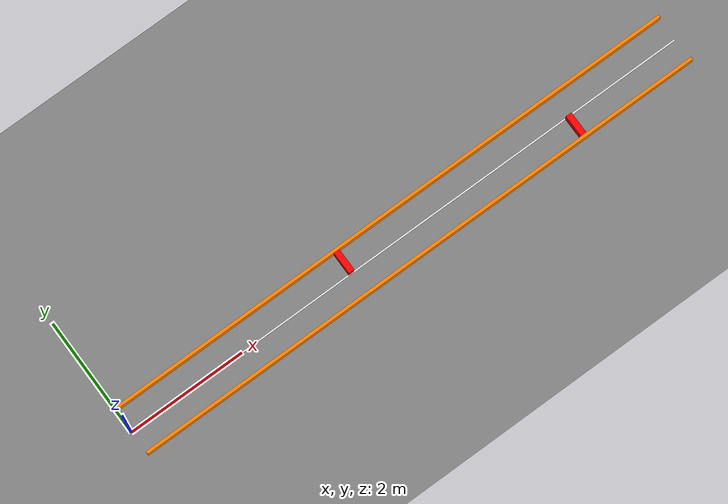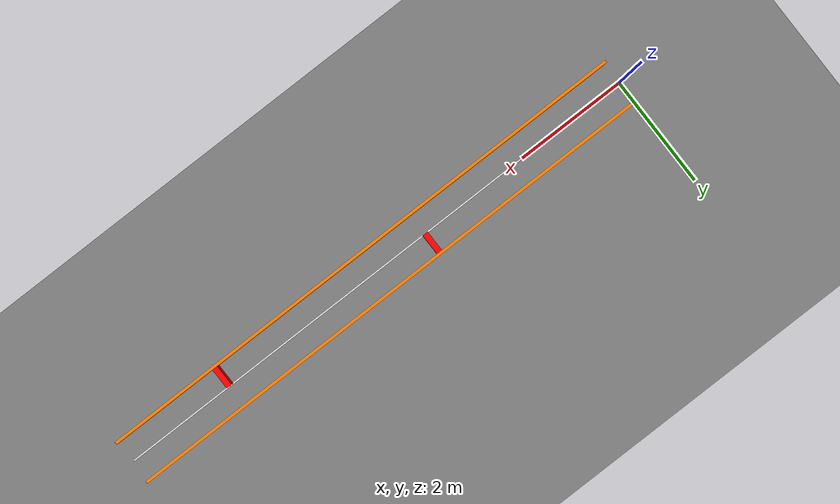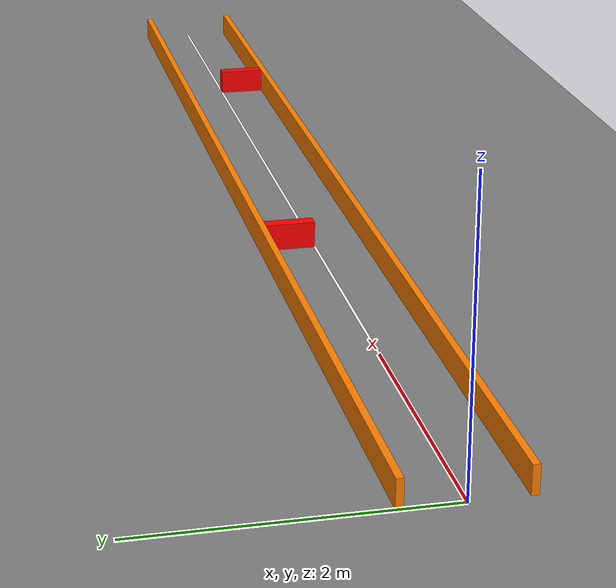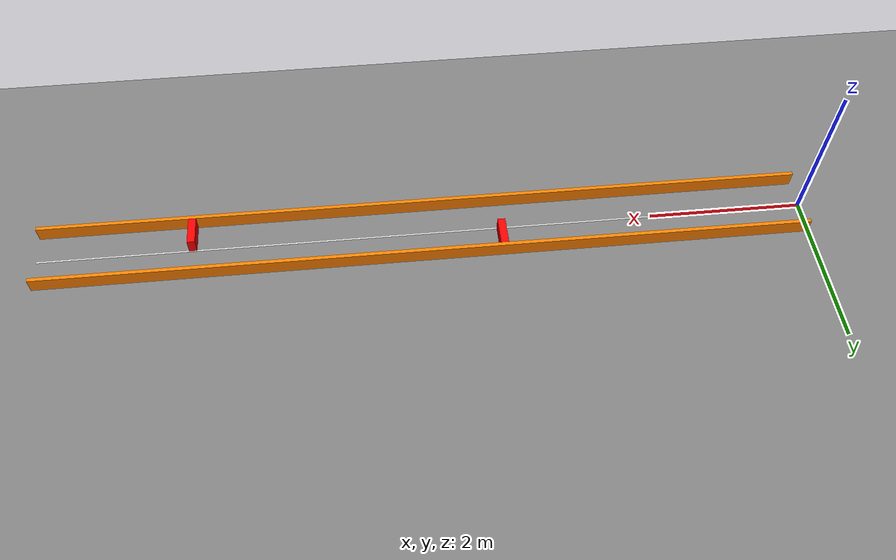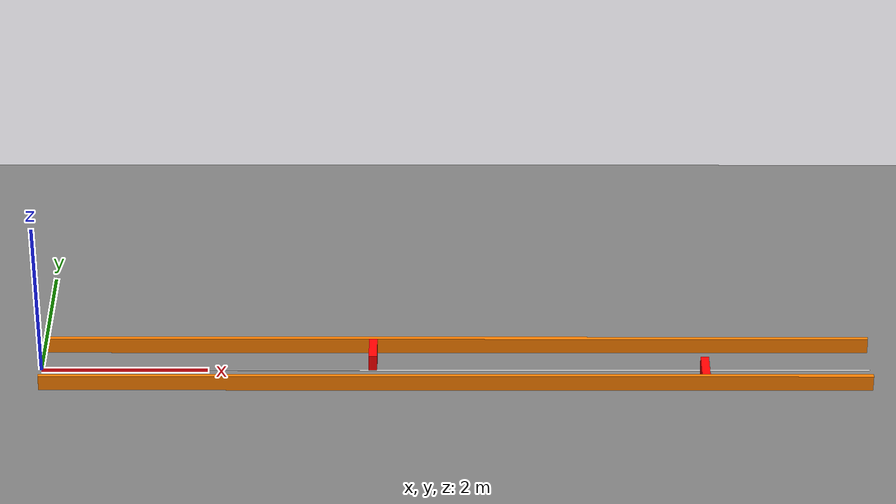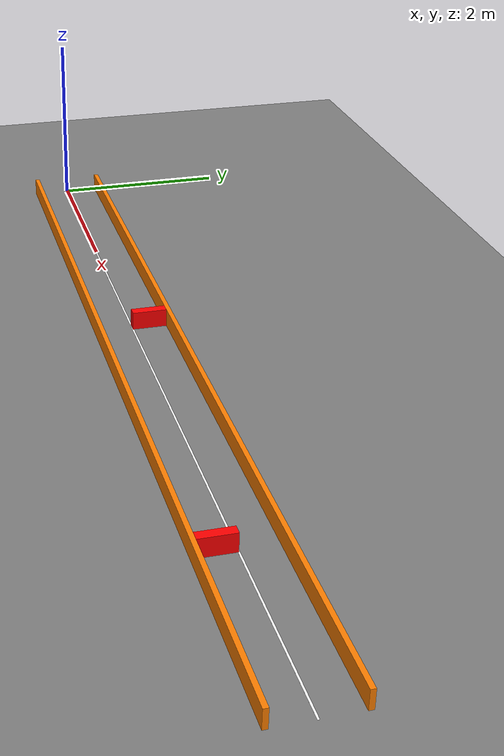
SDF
<?xml version="1.0" ?>
<sdf version="1.9">
  <world name="racing_track">
    <!-- Required Physics and Render Plugins for Modern Gazebo -->
    <physics name="1ms" type="ignored">
      <max_step_size>0.001</max_step_size>
      <real_time_factor>1.0</real_time_factor>
    </physics>
    <plugin filename="gz-sim-physics-system" name="gz::sim::systems::Physics" />
    <plugin filename="gz-sim-user-commands-system" name="gz::sim::systems::UserCommands" />
    <plugin filename="gz-sim-scene-broadcaster-system" name="gz::sim::systems::SceneBroadcaster" />

    <!-- Global Light Source -->
    <light type="directional" name="sun">
      <cast_shadows>true</cast_shadows>
      <pose>0 0 10 0 0 0</pose>
      <diffuse>0.8 0.8 0.8 1</diffuse>
      <specular>0.2 0.2 0.2 1</specular>
      <direction>-0.5 0.1 -0.9</direction>
    </light>

    <!-- Ground Plane -->
    <model name="ground_plane">
      <static>true</static>
      <link name="link">
        <collision name="collision">
          <geometry>
            <plane>
              <normal>0 0 1</normal>
              <size>20 20</size>
            </plane>
          </geometry>
        </collision>
        <visual name="visual">
          <geometry>
            <plane>
              <normal>0 0 1</normal>
              <size>20 20</size>
            </plane>
          </geometry>
          <material>
            <ambient>0.5 0.5 0.5 1</ambient>
            <diffuse>0.5 0.5 0.5 1</diffuse>
          </material>
        </visual>
      </link>
    </model>

    <!-- Track 02: Racing Track with Obstacles -->
    <model name="racing_track_map">
      <static>true</static>

      <!-- Left Wall (Same as Track 01) -->
      <link name="left_wall">
        <pose>5 0.4 0.1 0 0 0</pose>
        <collision name="collision">
          <geometry>
            <box><size>10 0.05 0.2</size></box>
          </geometry>
        </collision>
        <visual name="visual">
          <geometry>
            <box><size>10 0.05 0.2</size></box>
          </geometry>
          <material>
            <ambient>1 0.5 0 1</ambient>
            <diffuse>1 0.5 0 1</diffuse>
          </material>
        </visual>
      </link>

      <!-- Right Wall (Same as Track 01) -->
      <link name="right_wall">
        <pose>5 -0.4 0.1 0 0 0</pose>
        <collision name="collision">
          <geometry>
            <box><size>10 0.05 0.2</size></box>
          </geometry>
        </collision>
        <visual name="visual">
          <geometry>
            <box><size>10 0.05 0.2</size></box>
          </geometry>
          <material>
            <ambient>1 0.5 0 1</ambient>
            <diffuse>1 0.5 0 1</diffuse>
          </material>
        </visual>
      </link>

      <!-- Center Lane Divider (Visual Only) -->
      <link name="center_line">
        <pose>5 0 0.001 0 0 0</pose>
        <visual name="visual">
          <geometry>
            <box><size>10 0.02 0.001</size></box>
          </geometry>
          <material>
            <ambient>1 1 1 1</ambient>
            <diffuse>1 1 1 1</diffuse>
          </material>
        </visual>
      </link>

      <!-- Obstacle 1: At 4m mark, blocking Lane 1 (Left lane, y > 0) -->
      <link name="obstacle_1">
        <!-- Placed at X=4, Y=0.1875 (center of the left lane). Width is 0.375m to block exactly one lane. -->
        <pose>4 0.1875 0.1 0 0 0</pose>
        <collision name="collision">
          <geometry>
            <box><size>0.1 0.375 0.2</size></box>
          </geometry>
        </collision>
        <visual name="visual">
          <geometry>
            <box><size>0.1 0.375 0.2</size></box>
          </geometry>
          <material>
            <ambient>1 0 0 1</ambient> <!-- Red color for obstacles -->
            <diffuse>1 0 0 1</diffuse>
          </material>
        </visual>
      </link>

      <!-- Obstacle 2: At 8m mark, blocking Lane 2 (Right lane, y < 0) -->
      <link name="obstacle_2">
        <!-- Placed at X=8, Y=-0.1875 (center of the right lane). -->
        <pose>8 -0.1875 0.1 0 0 0</pose>
        <collision name="collision">
          <geometry>
            <box><size>0.1 0.375 0.2</size></box>
          </geometry>
        </collision>
        <visual name="visual">
          <geometry>
            <box><size>0.1 0.375 0.2</size></box>
          </geometry>
          <material>
            <ambient>1 0 0 1</ambient> <!-- Red color -->
            <diffuse>1 0 0 1</diffuse>
          </material>
        </visual>
      </link>

    </model>
  </world>
</sdf>
